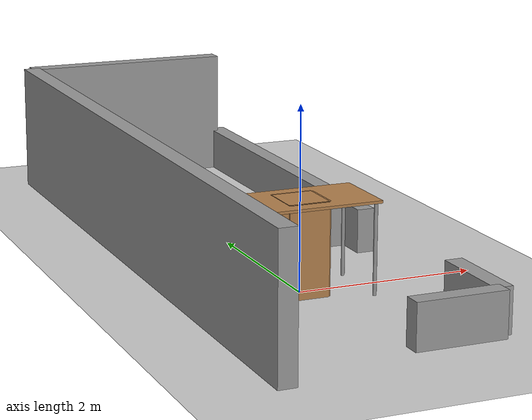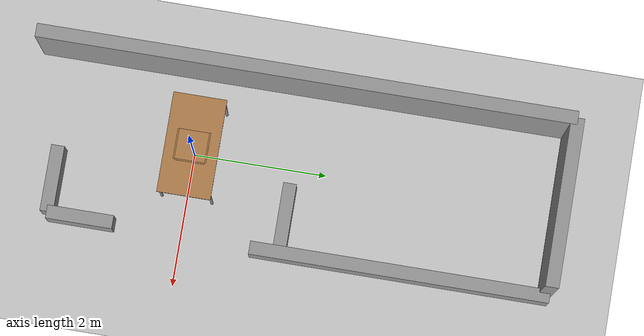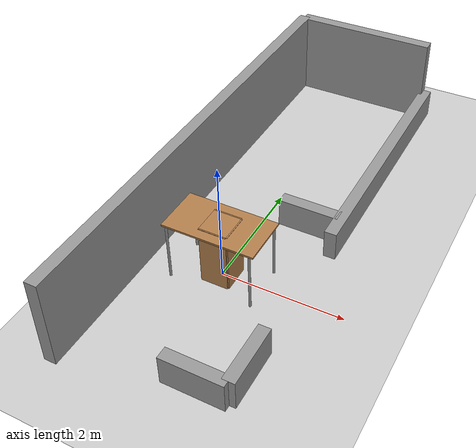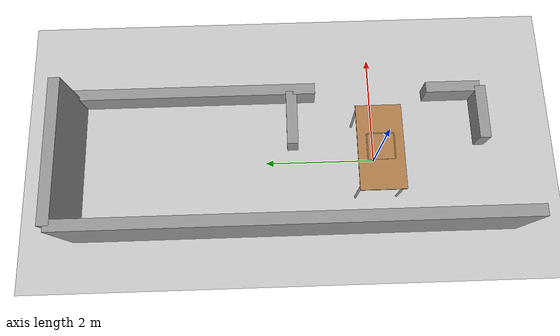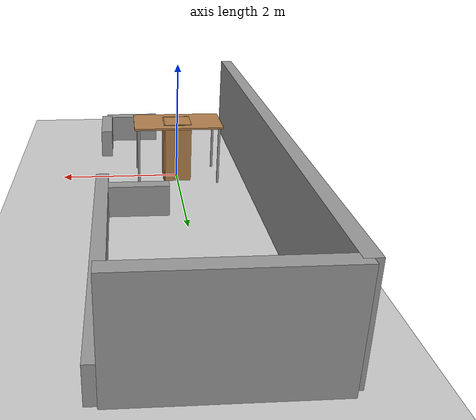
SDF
<sdf version="1.3">
 <world name="default">
  <include><uri>model://sun</uri></include>
  <include><uri>model://ground_plane</uri></include>
  <include><uri>model://table</uri></include>
  <include><uri>model://cabinet</uri></include>
  <model name="geb78_small">
   <link name="Wall_10">
    <collision name="Wall_10_Collision">
     <geometry><box><size>1 0.2 0.5</size></box></geometry>
     <pose>0 0 0.25 0 -0 0</pose>
    </collision>
    <visual name="Wall_10_Visual">
     <pose>0 0 0.25 0 -0 0</pose>
     <geometry><box><size>1 0.2 0.5</size></box></geometry>
     <material>
      <script><uri>file://media/materials/scripts/gazebo.material</uri><name>Gazebo/Grey</name></script>
     </material>
    </visual>
    <velocity_decay><linear>0</linear><angular>0</angular></velocity_decay>
    <pose>0.75 1.5 0 0 -0 3.14159</pose>
   </link>
   <link name="Wall_2">
    <collision name="Wall_2_Collision">
     <geometry><box><size>8 0.2 1.5</size></box></geometry>
     <pose>0 0 0.75 0 -0 0</pose>
    </collision>
    <visual name="Wall_2_Visual">
     <pose>0 0 0.75 0 -0 0</pose>
     <geometry><box><size>8 0.2 1.5</size></box></geometry>
     <material>
      <script><uri>file://media/materials/scripts/gazebo.material</uri><name>Gazebo/Grey</name></script>
     </material>
    </visual>
    <velocity_decay><linear>0</linear><angular>0</angular></velocity_decay>
    <pose>-1.25 1.5 0 0 -0 1.5708</pose>
   </link>
   <link name="Wall_3">
    <collision name="Wall_3_Collision">
     <geometry><box><size>2.5 0.2 1.5</size></box></geometry>
     <pose>0 0 0.75 0 -0 0</pose>
    </collision>
    <visual name="Wall_3_Visual">
     <pose>0 0 0.75 0 -0 0</pose>
     <geometry><box><size>2.5 0.2 1.5</size></box></geometry>
     <material>
      <script><uri>file://media/materials/scripts/gazebo.material</uri><name>Gazebo/Grey</name></script>
     </material>
    </visual>
    <velocity_decay><linear>0</linear><angular>0</angular></velocity_decay>
    <pose>0 5.5 0 0 -0 0</pose>
   </link>
   <link name="Wall_5">
    <collision name="Wall_5_Collision">
     <geometry><box><size>4.5 0.2 0.5</size></box></geometry>
     <pose>0 0 0.25 0 -0 0</pose>
    </collision>
    <visual name="Wall_5_Visual">
     <pose>0 0 0.25 0 -0 0</pose>
     <geometry><box><size>4.5 0.2 0.5</size></box></geometry>
     <material>
      <script><uri>file://media/materials/scripts/gazebo.material</uri><name>Gazebo/Grey</name></script>
     </material>
    </visual>
    <velocity_decay><linear>0</linear><angular>0</angular></velocity_decay>
    <pose>1.29 3.31 0 0 0 -1.5708</pose>
   </link>
   <link name="Wall_7">
    <collision name="Wall_7_Collision">
     <geometry><box><size>1 0.2 0.5</size></box></geometry>
     <pose>0 0 0.25 0 -0 0</pose>
    </collision>
    <visual name="Wall_7_Visual">
     <pose>0 0 0.25 0 -0 0</pose>
     <geometry><box><size>1 0.2 0.5</size></box></geometry>
     <material>
      <script><uri>file://media/materials/scripts/gazebo.material</uri><name>Gazebo/Grey</name></script>
     </material>
    </visual>
    <velocity_decay><linear>0</linear><angular>0</angular></velocity_decay>
    <pose>1.25 -1.5 0 0 0 -1.5708</pose>
   </link>
   <link name="Wall_8">
    <collision name="Wall_8_Collision">
     <geometry><box><size>1 0.2 0.5</size></box></geometry>
     <pose>0 0 0.25 0 -0 0</pose>
    </collision>
    <visual name="Wall_8_Visual">
     <pose>0 0 0.25 0 -0 0</pose>
     <geometry><box><size>1 0.2 0.5</size></box></geometry>
     <material>
      <script><uri>file://media/materials/scripts/gazebo.material</uri><name>Gazebo/Grey</name></script>
     </material>
    </visual>
    <velocity_decay><linear>0</linear><angular>0</angular></velocity_decay>
    <pose>0.75 -2 0 0 -0 3.14159</pose>
   </link>
   <static>1</static>
  </model>
 </world>
</sdf>

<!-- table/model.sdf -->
<sdf version="1.5">
  <model name="table">
    <static>true</static>
    <link name="link">
      <collision name="surface">
        <pose>0 0 1.0 0 0 0</pose>
        <geometry>
          <box>
            <size>1.5 0.8 0.03</size>
          </box>
        </geometry>
        <surface>
          <friction>
            <ode>
              <mu>0.6</mu>
              <mu2>0.6</mu2>
            </ode>
          </friction>
        </surface>
      </collision>
      <visual name="visual1">
        <pose>0 0 1.0 0 0 0</pose>
        <geometry>
          <box>
            <size>1.5 0.8 0.03</size>
          </box>
        </geometry>
        <material>
          <script>
            <uri>model://media/materials/scripts/gazebo.material</uri>
            <name>Gazebo/Wood</name>
          </script>
        </material>
      </visual>
      <collision name="front_left_leg">
        <pose>0.68 0.38 0.5 0 0 0</pose>
        <geometry>
          <cylinder>
            <radius>0.02</radius>
            <length>1.0</length>
          </cylinder>
        </geometry>
      </collision>
      <visual name="front_left_leg">
        <pose>0.68 0.38 0.5 0 0 0</pose>
        <geometry>
          <cylinder>
            <radius>0.02</radius>
            <length>1.0</length>
          </cylinder>
        </geometry>
        <material>
          <script>
            <uri>model://media/materials/scripts/gazebo.material</uri>
            <name>Gazebo/Grey</name>
          </script>
        </material>
      </visual>
      <collision name="front_right_leg">
        <pose>0.68 -0.38 0.5 0 0 0</pose>
        <geometry>
          <cylinder>
            <radius>0.02</radius>
            <length>1.0</length>
          </cylinder>
        </geometry>
      </collision>
      <visual name="front_right_leg">
        <pose>0.68 -0.38 0.5 0 0 0</pose>
        <geometry>
          <cylinder>
            <radius>0.02</radius>
            <length>1.0</length>
          </cylinder>
        </geometry>
        <material>
          <script>
            <uri>model://media/materials/scripts/gazebo.material</uri>
            <name>Gazebo/Grey</name>
          </script>
        </material>
      </visual>
      <collision name="back_right_leg">
        <pose>-0.68 -0.38 0.5 0 0 0</pose>
        <geometry>
          <cylinder>
            <radius>0.02</radius>
            <length>1.0</length>
          </cylinder>
        </geometry>
      </collision>
      <visual name="back_right_leg">
        <pose>-0.68 -0.38 0.5 0 0 0</pose>
        <geometry>
          <cylinder>
            <radius>0.02</radius>
            <length>1.0</length>
          </cylinder>
        </geometry>
        <material>
          <script>
            <uri>model://media/materials/scripts/gazebo.material</uri>
            <name>Gazebo/Grey</name>
          </script>
        </material>
      </visual>
      <collision name="back_left_leg">
        <pose>-0.68 0.38 0.5 0 0 0</pose>
        <geometry>
          <cylinder>
            <radius>0.02</radius>
            <length>1.0</length>
          </cylinder>
        </geometry>
      </collision>
      <visual name="back_left_leg">
        <pose>-0.68 0.38 0.5 0 0 0</pose>
        <geometry>
          <cylinder>
            <radius>0.02</radius>
            <length>1.0</length>
          </cylinder>
        </geometry>
        <material>
          <script>
            <uri>model://media/materials/scripts/gazebo.material</uri>
            <name>Gazebo/Grey</name>
          </script>
        </material>
      </visual>
    </link>
  </model>
</sdf>

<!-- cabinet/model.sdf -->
<sdf version="1.5">
  <model name="cabinet">
    <static>true</static>
    <link name="cabinet_bottom_plate">
      <inertial>
        <pose>0 0 -1 0 0 0</pose>
        <inertia>
          <ixx>2.050000</ixx>
          <ixy>0</ixy>
          <ixz>0</ixz>
          <iyy>2.050000</iyy>
          <iyz>0</iyz>
          <izz>2.050000</izz>
        </inertia>
        <mass>25.000000</mass>
      </inertial>
      <collision name="cabinet_bottom_plate_geom">
        <pose>0 0 0.010000 0 0 0</pose>
        <geometry>
          <box>
            <size>0.450000 0.450000 0.020000</size>
          </box>
        </geometry>
      </collision>
      <visual name="cabinet_bottom_plate_geom_visual">
        <pose>0 0 0.010000 0 0 0</pose>
        <geometry>
          <box>
            <size>0.450000 0.450000 0.020000</size>
          </box>
        </geometry>
        <material>
          <script>
            <uri>model://media/materials/scripts/gazebo.material</uri>
            <name>Gazebo/Wood</name>
          </script>
        </material>
      </visual>
      <collision name="cabinet_bottom_plate_geom_cabinet_back_plate">
        <pose>0.235000 0 0.510000 0 0 0</pose>
        <geometry>
          <box>
            <size>0.020000 0.450000 1.020000</size>
          </box>
        </geometry>
      </collision>
      <visual name="cabinet_bottom_plate_geom_cabinet_back_plate_visual">
        <pose>0.235000 0 0.510000 0 0 0</pose>
        <geometry>
          <box>
            <size>0.020000 0.450000 1.020000</size>
          </box>
        </geometry>
        <material>
          <script>
            <uri>model://media/materials/scripts/gazebo.material</uri>
            <name>Gazebo/Wood</name>
          </script>
        </material>
      </visual>
      <collision name="cabinet_bottom_plate_geom_cabinet_left_plate">
        <pose>0 0.235000 0.510000 0 0 0</pose>
        <geometry>
          <box>
            <size>0.450000 0.020000 1.020000</size>
          </box>
        </geometry>
      </collision>
      <visual name="cabinet_bottom_plate_geom_cabinet_left_plate_visual">
        <pose>0 0.235000 0.510000 0 0 0</pose>
        <geometry>
          <box>
            <size>0.450000 0.020000 1.020000</size>
          </box>
        </geometry>
        <material>
          <script>
            <uri>model://media/materials/scripts/gazebo.material</uri>
            <name>Gazebo/Wood</name>
          </script>
        </material>
      </visual>
      <collision name="cabinet_bottom_plate_geom_cabinet_middle_plate">
        <pose>0 0 0.510000 0 0 0</pose>
        <geometry>
          <box>
            <size>0.450000 0.450000 0.020000</size>
          </box>
        </geometry>
      </collision>
      <visual name="cabinet_bottom_plate_geom_cabinet_middle_plate_visual">
        <pose>0 0 0.510000 0 0 0</pose>
        <geometry>
          <box>
            <size>0.450000 0.450000 0.020000</size>
          </box>
        </geometry>
        <material>
          <script>
            <uri>model://media/materials/scripts/gazebo.material</uri>
            <name>Gazebo/Wood</name>
          </script>
        </material>
      </visual>
      <collision name="cabinet_bottom_plate_geom_cabinet_right_plate">
        <pose>0 -0.235000 0.510000 0 0 0</pose>
        <geometry>
          <box>
            <size>0.450000 0.020000 1.020000</size>
          </box>
        </geometry>
      </collision>
      <visual name="cabinet_bottom_plate_geom_cabinet_right_plate_visual">
        <pose>0 -0.235000 0.510000 0 0 0</pose>
        <geometry>
          <box>
            <size>0.450000 0.020000 1.020000</size>
          </box>
        </geometry>
        <material>
          <script>
            <uri>model://media/materials/scripts/gazebo.material</uri>
            <name>Gazebo/Wood</name>
          </script>
        </material>
      </visual>
      <collision name="cabinet_bottom_plate_geom_cabinet_top_plate">
        <pose>0 0 1.010000 0 0 0</pose>
        <geometry>
          <box>
            <size>0.450000 0.450000 0.020000</size>
          </box>
        </geometry>
      </collision>
      <visual name="cabinet_bottom_plate_geom_cabinet_top_plate_visual">
        <pose>0 0 1.010000 0 0 0</pose>
        <geometry>
          <box>
            <size>0.450000 0.450000 0.020000</size>
          </box>
        </geometry>
        <material>
          <script>
            <uri>model://media/materials/scripts/gazebo.material</uri>
            <name>Gazebo/Wood</name>
          </script>
        </material>
      </visual>
    </link>
  </model>
</sdf>
